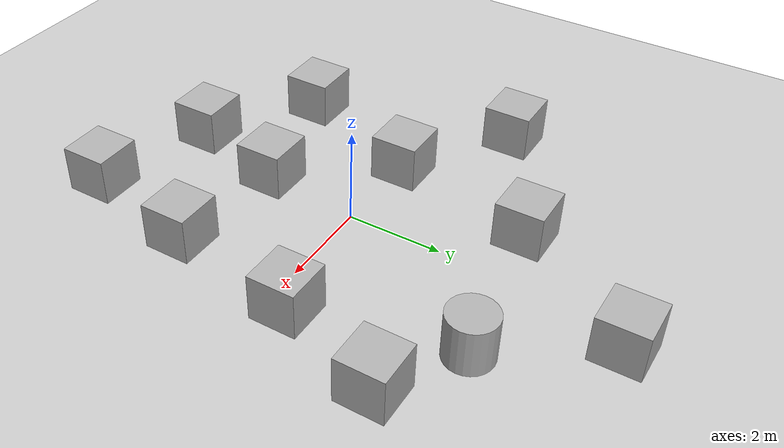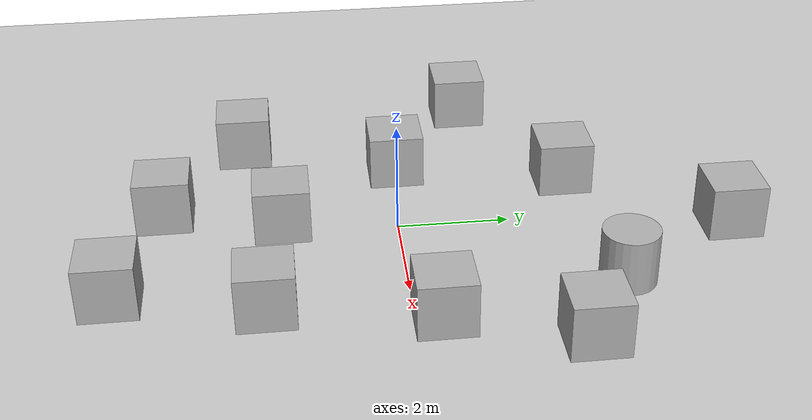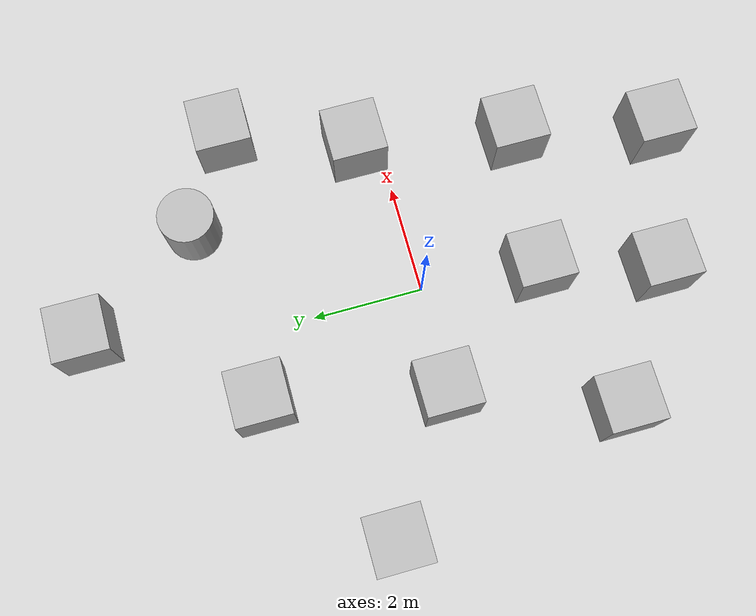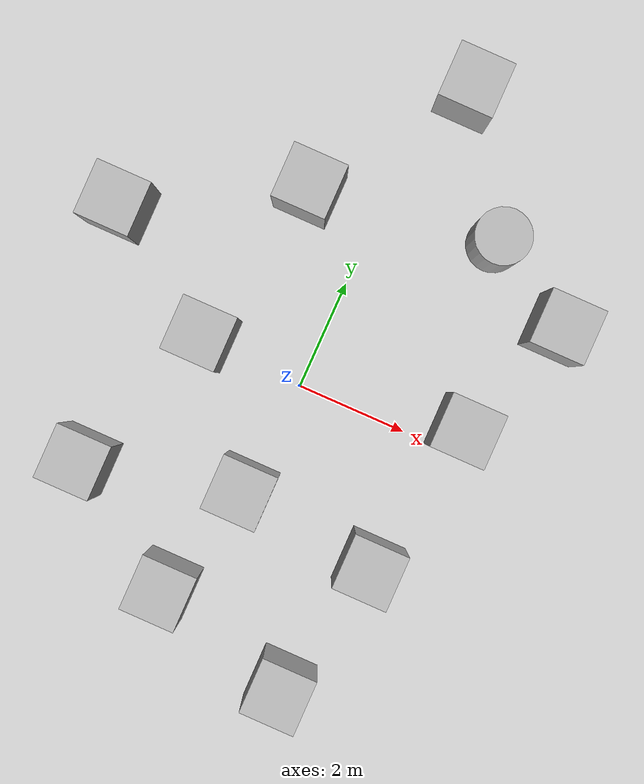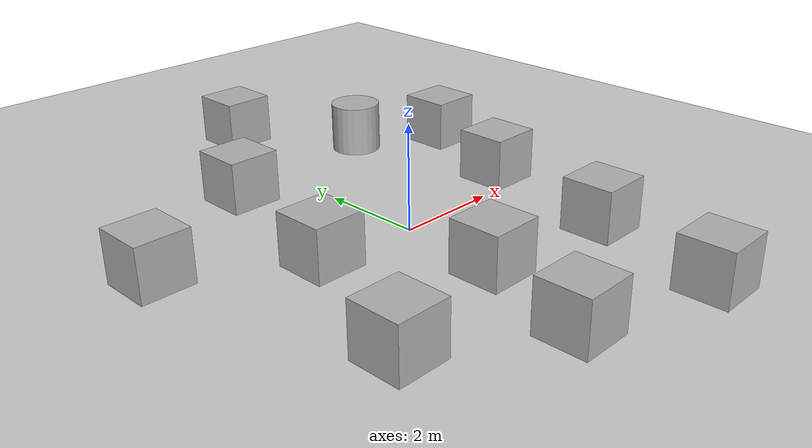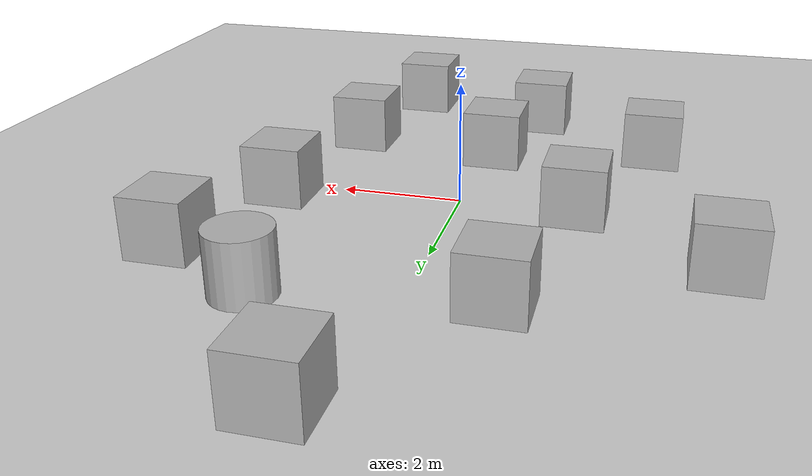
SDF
<sdf version='1.9'>
  <world name='empty'>
    <physics name='1ms' type='ignored'>
      <max_step_size>0.001</max_step_size>
      <real_time_factor>1</real_time_factor>
      <real_time_update_rate>1000</real_time_update_rate>
    </physics>
    <plugin name='gz::sim::systems::Physics' filename='gz-sim-physics-system'/>
    <plugin name='gz::sim::systems::UserCommands' filename='gz-sim-user-commands-system'/>
    <plugin name='gz::sim::systems::SceneBroadcaster' filename='gz-sim-scene-broadcaster-system'/>
    <plugin name='gz::sim::systems::Sensors' filename='gz-sim-sensors-system'>
      <render_engine>ogre2</render_engine>
    </plugin>
    <plugin name='gz::sim::systems::Contact' filename='gz-sim-contact-system'/>
    <gravity>0 0 -9.8</gravity>
    <magnetic_field>6e-06 2.3e-05 -4.2e-05</magnetic_field>
    <atmosphere type='adiabatic'/>
    <scene>
      <ambient>0.4 0.4 0.4 1</ambient>
      <background>0.7 0.7 0.7 1</background>
      <shadows>true</shadows>
    </scene>
    <model name='ground_plane'>
      <static>true</static>
      <link name='link'>
        <collision name='collision'>
          <geometry>
            <plane>
              <normal>0 0 1</normal>
              <size>100 100</size>
            </plane>
          </geometry>
          <surface>
            <friction>
              <ode/>
            </friction>
            <bounce/>
            <contact/>
          </surface>
        </collision>
        <visual name='visual'>
          <geometry>
            <plane>
              <normal>0 0 1</normal>
              <size>100 100</size>
            </plane>
          </geometry>
          <material>
            <ambient>0.8 0.8 0.8 1</ambient>
            <diffuse>0.8 0.8 0.8 1</diffuse>
            <specular>0.8 0.8 0.8 1</specular>
          </material>
        </visual>
        <pose>0 0 0 0 -0 0</pose>
        <inertial>
          <pose>0 0 0 0 -0 0</pose>
          <mass>1</mass>
          <inertia>
            <ixx>1</ixx>
            <ixy>0</ixy>
            <ixz>0</ixz>
            <iyy>1</iyy>
            <iyz>0</iyz>
            <izz>1</izz>
          </inertia>
        </inertial>
        <enable_wind>false</enable_wind>
      </link>
      <pose>0 0 0 0 -0 0</pose>
      <self_collide>false</self_collide>
    </model>
    <model name='box'>
      <pose>1.80292 -4.94023 0.5 0 -0 -0</pose>
      <link name='box_link'>
        <inertial>
          <inertia>
            <ixx>0.16666</ixx>
            <ixy>0</ixy>
            <ixz>0</ixz>
            <iyy>0.16666</iyy>
            <iyz>0</iyz>
            <izz>0.16666</izz>
          </inertia>
          <mass>1</mass>
          <pose>0 0 0 0 -0 0</pose>
        </inertial>
        <collision name='box_collision'>
          <geometry>
            <box>
              <size>1 1 1</size>
            </box>
          </geometry>
          <surface>
            <friction>
              <ode/>
            </friction>
            <bounce/>
            <contact/>
          </surface>
        </collision>
        <visual name='box_visual'>
          <geometry>
            <box>
              <size>1 1 1</size>
            </box>
          </geometry>
          <material>
            <ambient>0.3 0.3 0.3 1</ambient>
            <diffuse>0.7 0.7 0.7 1</diffuse>
            <specular>1 1 1 1</specular>
          </material>
        </visual>
        <pose>0 0 0 0 -0 0</pose>
        <enable_wind>false</enable_wind>
      </link>
      <static>false</static>
      <self_collide>false</self_collide>
    </model>
    <model name='cylinder'>
      <pose>2.12782 3.70295 0.499999 0 0 -0</pose>
      <link name='cylinder_link'>
        <inertial>
          <inertia>
            <ixx>0.14580000000000001</ixx>
            <ixy>0</ixy>
            <ixz>0</ixz>
            <iyy>0.14580000000000001</iyy>
            <iyz>0</iyz>
            <izz>0.125</izz>
          </inertia>
          <mass>1</mass>
          <pose>0 0 0 0 -0 0</pose>
        </inertial>
        <collision name='cylinder_collision'>
          <geometry>
            <cylinder>
              <radius>0.5</radius>
              <length>1</length>
            </cylinder>
          </geometry>
          <surface>
            <friction>
              <ode/>
            </friction>
            <bounce/>
            <contact/>
          </surface>
        </collision>
        <visual name='cylinder_visual'>
          <geometry>
            <cylinder>
              <radius>0.5</radius>
              <length>1</length>
            </cylinder>
          </geometry>
          <material>
            <ambient>0.3 0.3 0.3 1</ambient>
            <diffuse>0.7 0.7 0.7 1</diffuse>
            <specular>1 1 1 1</specular>
          </material>
        </visual>
        <pose>0 0 0 0 -0 0</pose>
        <enable_wind>false</enable_wind>
      </link>
      <static>false</static>
      <self_collide>false</self_collide>
    </model>
    <model name='box_0'>
      <pose>2.38358 -2.39399 0.5 0 0 -0</pose>
      <link name='box_link'>
        <inertial>
          <inertia>
            <ixx>0.16666</ixx>
            <ixy>0</ixy>
            <ixz>0</ixz>
            <iyy>0.16666</iyy>
            <iyz>0</iyz>
            <izz>0.16666</izz>
          </inertia>
          <mass>1</mass>
          <pose>0 0 0 0 -0 0</pose>
        </inertial>
        <collision name='box_collision'>
          <geometry>
            <box>
              <size>1 1 1</size>
            </box>
          </geometry>
          <surface>
            <friction>
              <ode/>
            </friction>
            <bounce/>
            <contact/>
          </surface>
        </collision>
        <visual name='box_visual'>
          <geometry>
            <box>
              <size>1 1 1</size>
            </box>
          </geometry>
          <material>
            <ambient>0.3 0.3 0.3 1</ambient>
            <diffuse>0.7 0.7 0.7 1</diffuse>
            <specular>1 1 1 1</specular>
          </material>
        </visual>
        <pose>0 0 0 0 -0 0</pose>
        <enable_wind>false</enable_wind>
      </link>
      <static>false</static>
      <self_collide>false</self_collide>
    </model>
    <model name='box_1'>
      <pose>2.92265 0.460382 0.5 0 0 -0</pose>
      <link name='box_link'>
        <inertial>
          <inertia>
            <ixx>0.16666</ixx>
            <ixy>0</ixy>
            <ixz>0</ixz>
            <iyy>0.16666</iyy>
            <iyz>0</iyz>
            <izz>0.16666</izz>
          </inertia>
          <mass>1</mass>
          <pose>0 0 0 0 -0 0</pose>
        </inertial>
        <collision name='box_collision'>
          <geometry>
            <box>
              <size>1 1 1</size>
            </box>
          </geometry>
          <surface>
            <friction>
              <ode/>
            </friction>
            <bounce/>
            <contact/>
          </surface>
        </collision>
        <visual name='box_visual'>
          <geometry>
            <box>
              <size>1 1 1</size>
            </box>
          </geometry>
          <material>
            <ambient>0.3 0.3 0.3 1</ambient>
            <diffuse>0.7 0.7 0.7 1</diffuse>
            <specular>1 1 1 1</specular>
          </material>
        </visual>
        <pose>0 0 0 0 -0 0</pose>
        <enable_wind>false</enable_wind>
      </link>
      <static>false</static>
      <self_collide>false</self_collide>
    </model>
    <model name='box_2'>
      <pose>-1.24376 3.23336 0.5 0 0 -0</pose>
      <link name='box_link'>
        <inertial>
          <inertia>
            <ixx>0.16666</ixx>
            <ixy>0</ixy>
            <ixz>0</ixz>
            <iyy>0.16666</iyy>
            <iyz>0</iyz>
            <izz>0.16666</izz>
          </inertia>
          <mass>1</mass>
          <pose>0 0 0 0 -0 0</pose>
        </inertial>
        <collision name='box_collision'>
          <geometry>
            <box>
              <size>1 1 1</size>
            </box>
          </geometry>
          <surface>
            <friction>
              <ode/>
            </friction>
            <bounce/>
            <contact/>
          </surface>
        </collision>
        <visual name='box_visual'>
          <geometry>
            <box>
              <size>1 1 1</size>
            </box>
          </geometry>
          <material>
            <ambient>0.3 0.3 0.3 1</ambient>
            <diffuse>0.7 0.7 0.7 1</diffuse>
            <specular>1 1 1 1</specular>
          </material>
        </visual>
        <pose>0 0 0 0 -0 0</pose>
        <enable_wind>false</enable_wind>
      </link>
      <static>false</static>
      <self_collide>false</self_collide>
    </model>
    <model name='box_3'>
      <pose>-1.90924 0.126988 0.5 0 0 -0</pose>
      <link name='box_link'>
        <inertial>
          <inertia>
            <ixx>0.16666</ixx>
            <ixy>0</ixy>
            <ixz>0</ixz>
            <iyy>0.16666</iyy>
            <iyz>0</iyz>
            <izz>0.16666</izz>
          </inertia>
          <mass>1</mass>
          <pose>0 0 0 0 -0 0</pose>
        </inertial>
        <collision name='box_collision'>
          <geometry>
            <box>
              <size>1 1 1</size>
            </box>
          </geometry>
          <surface>
            <friction>
              <ode/>
            </friction>
            <bounce/>
            <contact/>
          </surface>
        </collision>
        <visual name='box_visual'>
          <geometry>
            <box>
              <size>1 1 1</size>
            </box>
          </geometry>
          <material>
            <ambient>0.3 0.3 0.3 1</ambient>
            <diffuse>0.7 0.7 0.7 1</diffuse>
            <specular>1 1 1 1</specular>
          </material>
        </visual>
        <pose>0 0 0 0 -0 0</pose>
        <enable_wind>false</enable_wind>
      </link>
      <static>false</static>
      <self_collide>false</self_collide>
    </model>
    <model name='box_4'>
      <pose>-0.752923 -4.16529 0.5 0 0 -0</pose>
      <link name='box_link'>
        <inertial>
          <inertia>
            <ixx>0.16666</ixx>
            <ixy>0</ixy>
            <ixz>0</ixz>
            <iyy>0.16666</iyy>
            <iyz>0</iyz>
            <izz>0.16666</izz>
          </inertia>
          <mass>1</mass>
          <pose>0 0 0 0 -0 0</pose>
        </inertial>
        <collision name='box_collision'>
          <geometry>
            <box>
              <size>1 1 1</size>
            </box>
          </geometry>
          <surface>
            <friction>
              <ode/>
            </friction>
            <bounce/>
            <contact/>
          </surface>
        </collision>
        <visual name='box_visual'>
          <geometry>
            <box>
              <size>1 1 1</size>
            </box>
          </geometry>
          <material>
            <ambient>0.3 0.3 0.3 1</ambient>
            <diffuse>0.7 0.7 0.7 1</diffuse>
            <specular>1 1 1 1</specular>
          </material>
        </visual>
        <pose>0 0 0 0 -0 0</pose>
        <enable_wind>false</enable_wind>
      </link>
      <static>false</static>
      <self_collide>false</self_collide>
    </model>
    <model name='box_5'>
      <pose>-2.97119 -2.72248 0.5 0 0 -0</pose>
      <link name='box_link'>
        <inertial>
          <inertia>
            <ixx>0.16666</ixx>
            <ixy>0</ixy>
            <ixz>0</ixz>
            <iyy>0.16666</iyy>
            <iyz>0</iyz>
            <izz>0.16666</izz>
          </inertia>
          <mass>1</mass>
          <pose>0 0 0 0 -0 0</pose>
        </inertial>
        <collision name='box_collision'>
          <geometry>
            <box>
              <size>1 1 1</size>
            </box>
          </geometry>
          <surface>
            <friction>
              <ode/>
            </friction>
            <bounce/>
            <contact/>
          </surface>
        </collision>
        <visual name='box_visual'>
          <geometry>
            <box>
              <size>1 1 1</size>
            </box>
          </geometry>
          <material>
            <ambient>0.3 0.3 0.3 1</ambient>
            <diffuse>0.7 0.7 0.7 1</diffuse>
            <specular>1 1 1 1</specular>
          </material>
        </visual>
        <pose>0 0 0 0 -0 0</pose>
        <enable_wind>false</enable_wind>
      </link>
      <static>false</static>
      <self_collide>false</self_collide>
    </model>
    <model name='box_6'>
      <pose>-0.191016 -2.0631 0.5 0 0 -0</pose>
      <link name='box_link'>
        <inertial>
          <inertia>
            <ixx>0.16666</ixx>
            <ixy>0</ixy>
            <ixz>0</ixz>
            <iyy>0.16666</iyy>
            <iyz>0</iyz>
            <izz>0.16666</izz>
          </inertia>
          <mass>1</mass>
          <pose>0 0 0 0 -0 0</pose>
        </inertial>
        <collision name='box_collision'>
          <geometry>
            <box>
              <size>1 1 1</size>
            </box>
          </geometry>
          <surface>
            <friction>
              <ode/>
            </friction>
            <bounce/>
            <contact/>
          </surface>
        </collision>
        <visual name='box_visual'>
          <geometry>
            <box>
              <size>1 1 1</size>
            </box>
          </geometry>
          <material>
            <ambient>0.3 0.3 0.3 1</ambient>
            <diffuse>0.7 0.7 0.7 1</diffuse>
            <specular>1 1 1 1</specular>
          </material>
        </visual>
        <pose>0 0 0 0 -0 0</pose>
        <enable_wind>false</enable_wind>
      </link>
      <static>false</static>
      <self_collide>false</self_collide>
    </model>
    <model name='box_7'>
      <pose>3.74306 2.75478 0.5 0 0 -0</pose>
      <link name='box_link'>
        <inertial>
          <inertia>
            <ixx>0.16666</ixx>
            <ixy>0</ixy>
            <ixz>0</ixz>
            <iyy>0.16666</iyy>
            <iyz>0</iyz>
            <izz>0.16666</izz>
          </inertia>
          <mass>1</mass>
          <pose>0 0 0 0 -0 0</pose>
        </inertial>
        <collision name='box_collision'>
          <geometry>
            <box>
              <size>1 1 1</size>
            </box>
          </geometry>
          <surface>
            <friction>
              <ode/>
            </friction>
            <bounce/>
            <contact/>
          </surface>
        </collision>
        <visual name='box_visual'>
          <geometry>
            <box>
              <size>1 1 1</size>
            </box>
          </geometry>
          <material>
            <ambient>0.3 0.3 0.3 1</ambient>
            <diffuse>0.7 0.7 0.7 1</diffuse>
            <specular>1 1 1 1</specular>
          </material>
        </visual>
        <pose>0 0 0 0 -0 0</pose>
        <enable_wind>false</enable_wind>
      </link>
      <static>false</static>
      <self_collide>false</self_collide>
    </model>
    <model name='box_8'>
      <pose>-4.16281 1.62504 0.5 -0 0 -0</pose>
      <link name='box_link'>
        <inertial>
          <inertia>
            <ixx>0.16666</ixx>
            <ixy>0</ixy>
            <ixz>0</ixz>
            <iyy>0.16666</iyy>
            <iyz>0</iyz>
            <izz>0.16666</izz>
          </inertia>
          <mass>1</mass>
          <pose>0 0 0 0 -0 0</pose>
        </inertial>
        <collision name='box_collision'>
          <geometry>
            <box>
              <size>1 1 1</size>
            </box>
          </geometry>
          <surface>
            <friction>
              <ode/>
            </friction>
            <bounce/>
            <contact/>
          </surface>
        </collision>
        <visual name='box_visual'>
          <geometry>
            <box>
              <size>1 1 1</size>
            </box>
          </geometry>
          <material>
            <ambient>0.3 0.3 0.3 1</ambient>
            <diffuse>0.7 0.7 0.7 1</diffuse>
            <specular>1 1 1 1</specular>
          </material>
        </visual>
        <pose>0 0 0 0 -0 0</pose>
        <enable_wind>false</enable_wind>
      </link>
      <static>false</static>
      <self_collide>false</self_collide>
    </model>
    <model name='box_9'>
      <pose>0.642526 5.93732 0.5 0 0 -0</pose>
      <link name='box_link'>
        <inertial>
          <inertia>
            <ixx>0.16666</ixx>
            <ixy>0</ixy>
            <ixz>0</ixz>
            <iyy>0.16666</iyy>
            <iyz>0</iyz>
            <izz>0.16666</izz>
          </inertia>
          <mass>1</mass>
          <pose>0 0 0 0 -0 0</pose>
        </inertial>
        <collision name='box_collision'>
          <geometry>
            <box>
              <size>1 1 1</size>
            </box>
          </geometry>
          <surface>
            <friction>
              <ode/>
            </friction>
            <bounce/>
            <contact/>
          </surface>
        </collision>
        <visual name='box_visual'>
          <geometry>
            <box>
              <size>1 1 1</size>
            </box>
          </geometry>
          <material>
            <ambient>0.3 0.3 0.3 1</ambient>
            <diffuse>0.7 0.7 0.7 1</diffuse>
            <specular>1 1 1 1</specular>
          </material>
        </visual>
        <pose>0 0 0 0 -0 0</pose>
        <enable_wind>false</enable_wind>
      </link>
      <static>false</static>
      <self_collide>false</self_collide>
    </model>
    <light name='sun' type='directional'>
      <pose>0 0 10 0 -0 0</pose>
      <cast_shadows>false</cast_shadows>
      <intensity>1</intensity>
      <direction>-0.5 0.1 -0.9</direction>
      <diffuse>0.8 0.8 0.8 1</diffuse>
      <specular>0.2 0.2 0.2 1</specular>
      <attenuation>
        <range>1000</range>
        <linear>0.01</linear>
        <constant>0.90000000000000002</constant>
        <quadratic>0.001</quadratic>
      </attenuation>
      <spot>
        <inner_angle>0</inner_angle>
        <outer_angle>0</outer_angle>
        <falloff>0</falloff>
      </spot>
    </light>
  </world>
</sdf>
